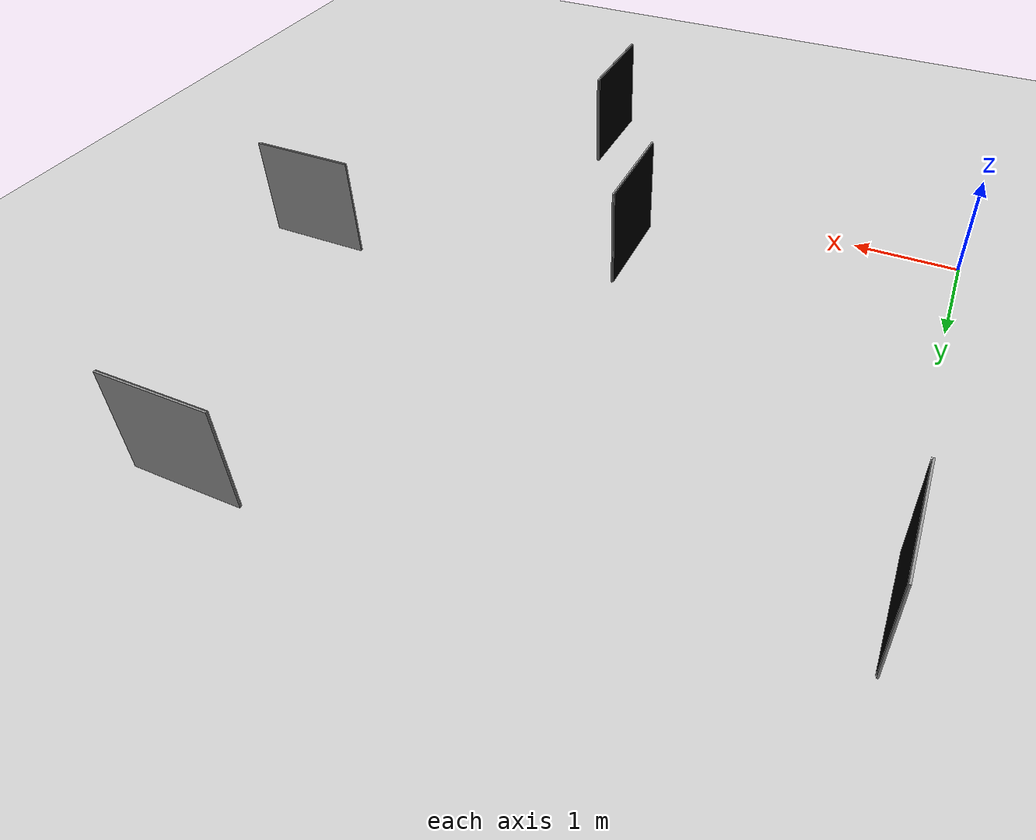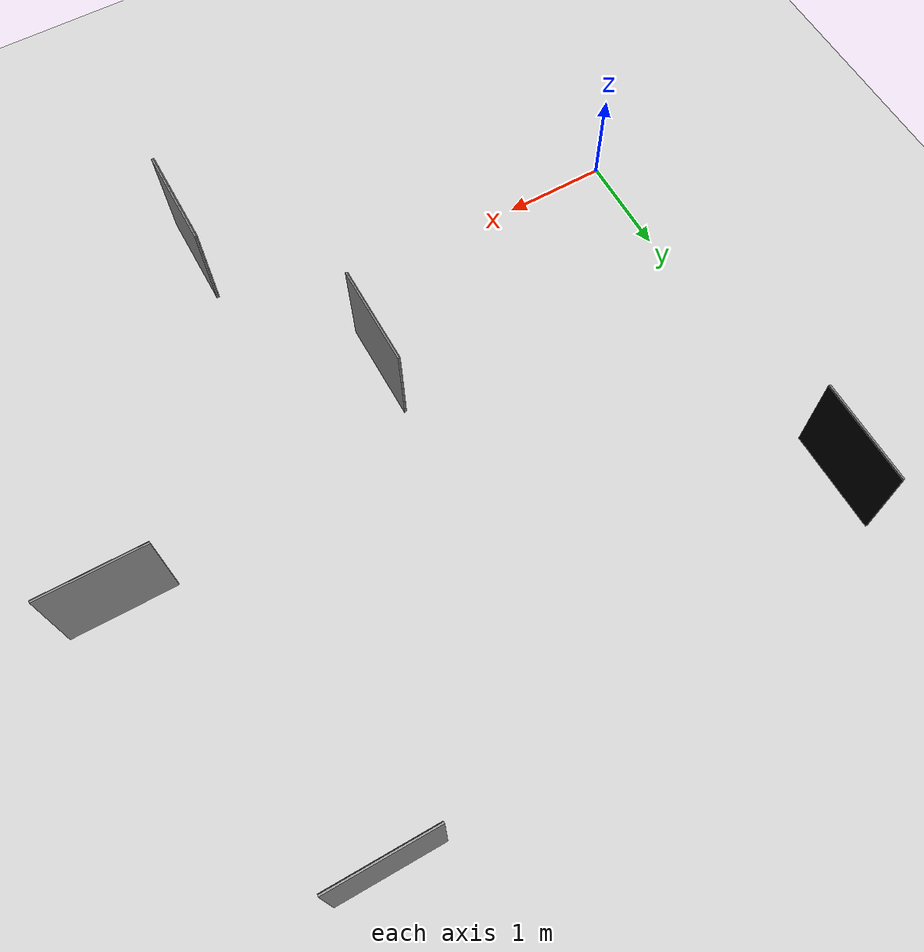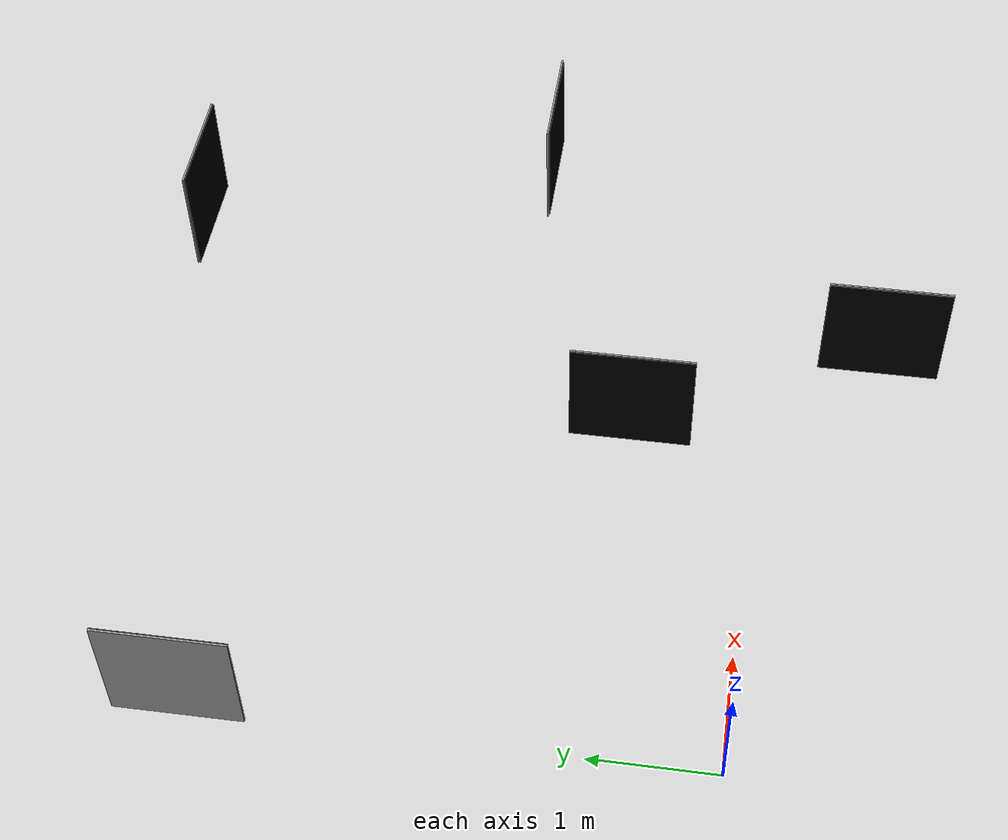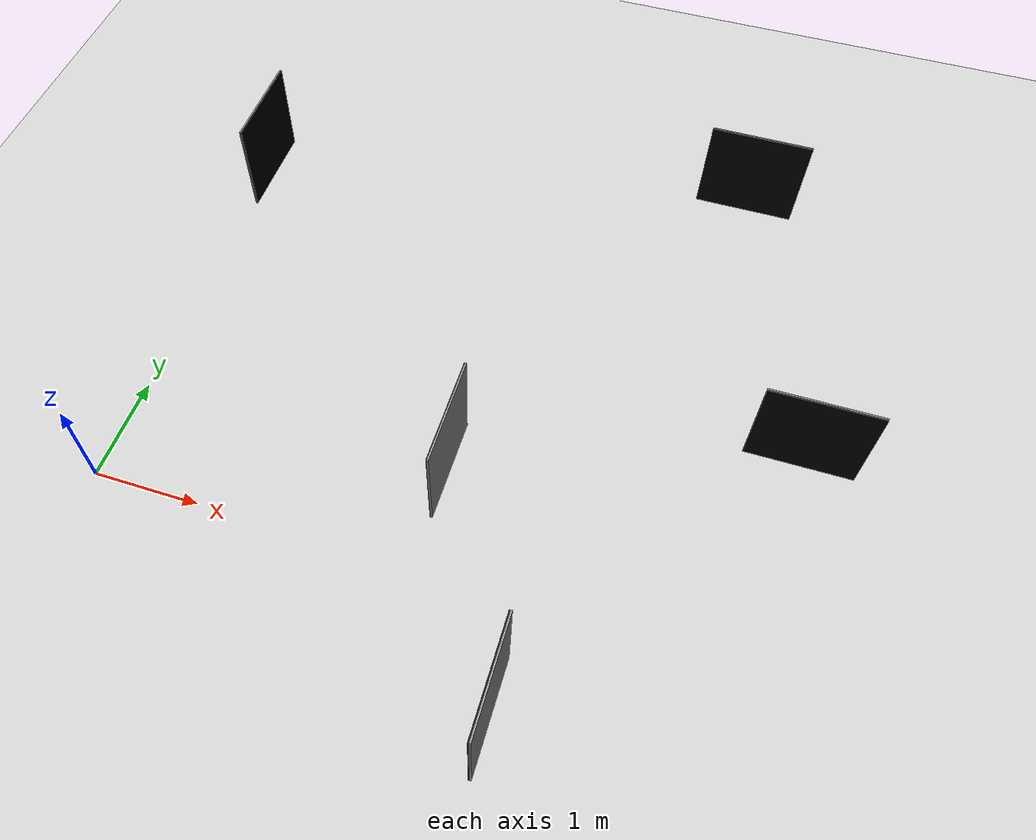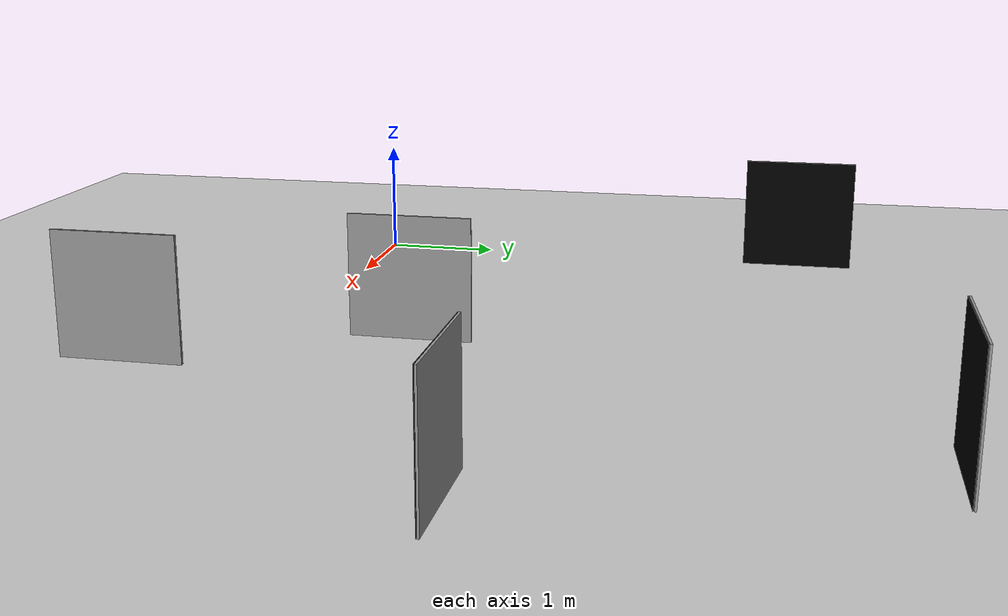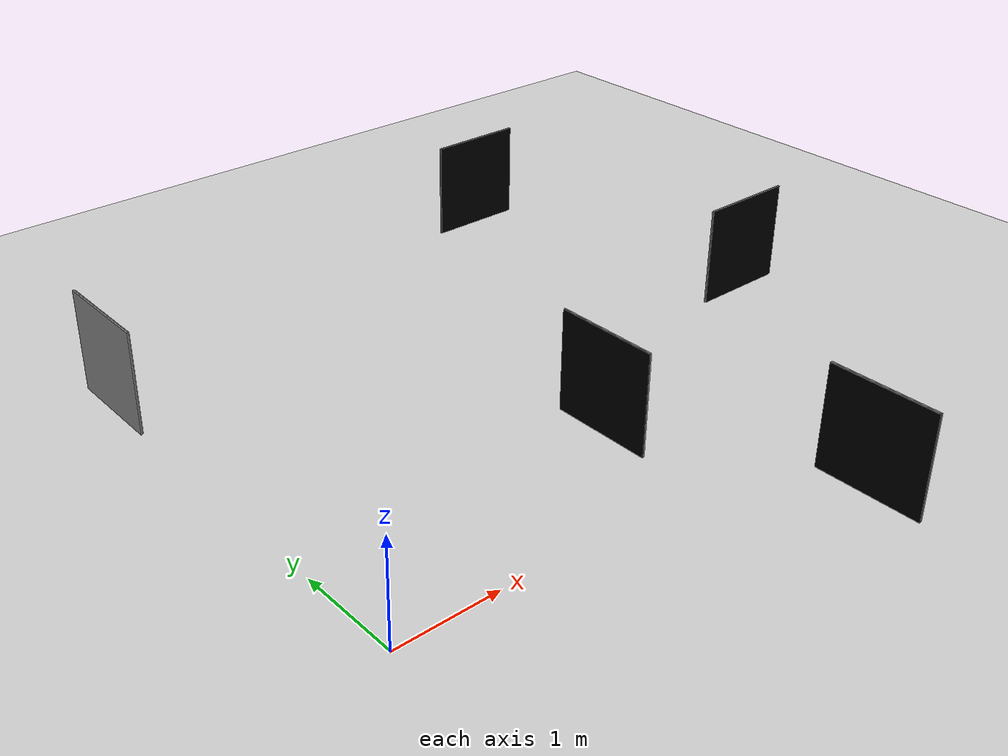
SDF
<sdf version="1.6">
 <world name="default">
  <scene><ambient>0.4 0.4 0.4 1</ambient><background>0.7 0.7 0.7 1</background><shadows>1</shadows></scene>
  <light name="sun" type="directional">
   <pose>0 0 10 0 -0 0</pose>
   <diffuse>0.8 0.8 0.8 1</diffuse>
   <specular>0.2 0.2 0.2 1</specular>
   <attenuation>
    <range>1000</range>
    <constant>0.9</constant>
    <linear>0.01</linear>
    <quadratic>0.001</quadratic>
   </attenuation>
   <direction>-0.5 0.1 -0.9</direction>
  </light>
  <model name="ground_plane">
   <static>1</static>
   <link name="link">
    <collision name="collision">
     <geometry><plane><normal>0 0 1</normal><size>100 100</size></plane></geometry>
     <surface><friction><ode><mu>100</mu><mu2>50</mu2></ode></friction></surface>
    </collision>
    <visual name="visual">
     <cast_shadows>0</cast_shadows>
     <geometry><plane><normal>0 0 1</normal><size>100 100</size></plane></geometry>
     <material>
      <script><uri>file://media/materials/scripts/gazebo.material</uri><name>Gazebo/Grey</name></script>
     </material>
    </visual>
   </link>
  </model>
  <gravity>0 0 -9.8</gravity>
  <magnetic_field>6e-06 2.3e-05 -4.2e-05</magnetic_field>
  <atmosphere type="adiabatic"/>
  <physics name="default_physics" default="0" type="ode">
   <max_step_size>0.001</max_step_size>
   <real_time_factor>1</real_time_factor>
   <real_time_update_rate>1000</real_time_update_rate>
  </physics>
  <spherical_coordinates>
   <surface_model>EARTH_WGS84</surface_model>
   <latitude_deg>0</latitude_deg>
   <longitude_deg>0</longitude_deg>
   <elevation>0</elevation>
   <heading_deg>0</heading_deg>
  </spherical_coordinates>
  <model name="Tag_0">
   <static>1</static>
   <link name="robot_link">
    <visual name="body_visual">
     <geometry><box><size>1 0.01 1</size></box></geometry>
     <material>
      <ambient>0 0 0 1</ambient>
      <diffuse>0 0 0 1</diffuse>
      <specular>0 0 0 0</specular>
      <emissive>1 1 1 1</emissive>
      <script>
       <uri>model://Tag_0/materials/scripts</uri>
       <uri>model://Tag_0/materials/textures</uri>
       <name>RepeatedTextureTag0</name>
      </script>
     </material>
    </visual>
   </link>
   <pose>4 -1 0.5 0 0 -1.5708</pose>
  </model>
  <physics name="default_physics" default="0" type="ode">
   <real_time_update_rate>1000</real_time_update_rate>
   <max_step_size>0.001</max_step_size>
   <real_time_factor>1</real_time_factor>
   <ode>
    <solver>
     <type>quick</type>
     <iters>150</iters>
     <precon_iters>0</precon_iters>
     <sor>1.4</sor>
     <use_dynamic_moi_rescaling>1</use_dynamic_moi_rescaling>
    </solver>
    <constraints>
     <cfm>1e-05</cfm>
     <erp>0.2</erp>
     <contact_max_correcting_vel>2000</contact_max_correcting_vel>
     <contact_surface_layer>0.01</contact_surface_layer>
    </constraints>
   </ode>
  </physics>
  <model name="Tag_1">
   <static>1</static>
   <link name="robot_link">
    <visual name="body_visual">
     <geometry><box><size>1 0.001 1</size></box></geometry>
     <material>
      <ambient>0 0 0 1</ambient>
      <diffuse>0 0 0 1</diffuse>
      <specular>0 0 0 0</specular>
      <emissive>1 1 1 1</emissive>
      <script>
       <uri>model://Tag_1/materials/scripts</uri>
       <uri>model://Tag_1/materials/textures</uri>
       <name>RepeatedTextureTag1</name>
      </script>
     </material>
    </visual>
   </link>
   <pose>3 1 0.5 0 0 -1.5708</pose>
  </model>
  <model name="Tag_2">
   <static>1</static>
   <link name="robot_link">
    <visual name="body_visual">
     <geometry><box><size>1 0.001 1</size></box></geometry>
     <material>
      <ambient>0 0 0 1</ambient>
      <diffuse>0 0 0 1</diffuse>
      <specular>0 0 0 0</specular>
      <emissive>1 1 1 1</emissive>
      <script>
       <uri>model://Tag_2/materials/scripts</uri>
       <uri>model://Tag_2/materials/textures</uri>
       <name>RepeatedTextureTag2</name>
      </script>
     </material>
    </visual>
   </link>
   <pose>6 2 0.5 0 -0 0</pose>
  </model>
  <model name="Tag_3">
   <static>1</static>
   <link name="robot_link">
    <visual name="body_visual">
     <geometry><box><size>1 0.001 1</size></box></geometry>
     <material>
      <ambient>0 0 0 1</ambient>
      <diffuse>0 0 0 1</diffuse>
      <specular>0 0 0 0</specular>
      <emissive>1 1 1 1</emissive>
      <script>
       <uri>model://Tag_3/materials/scripts</uri>
       <uri>model://Tag_3/materials/textures</uri>
       <name>RepeatedTextureTag3</name>
      </script>
     </material>
    </visual>
   </link>
   <pose>5 5 0.5 0 -0 0</pose>
  </model>
  <model name="Tag_4">
   <static>1</static>
   <link name="robot_link">
    <visual name="body_visual">
     <geometry><box><size>1 0.001 1</size></box></geometry>
     <material>
      <ambient>0 0 0 1</ambient>
      <diffuse>0 0 0 1</diffuse>
      <specular>0 0 0 0</specular>
      <emissive>1 1 1 1</emissive>
      <script>
       <uri>model://Tag_4/materials/scripts</uri>
       <uri>model://Tag_4/materials/textures</uri>
       <name>RepeatedTextureTag4</name>
      </script>
     </material>
    </visual>
   </link>
   <pose>0 4 0.5 0 0 -1.5708</pose>
  </model>
  <model name="grey_box">
   <static>1</static>
   <link name="robot_link">
    <visual name="body_visual">
     <geometry><box><size>1 0.015 1</size></box></geometry>
     <material>
      <script><name>Gazebo/Grey</name><uri>file://media/materials/scripts/gazebo.material</uri></script>
      <shader type="pixel"><normal_map>__default__</normal_map></shader>
      <ambient>0.3 0.3 0.3 1</ambient>
      <diffuse>0.7 0.7 0.7 1</diffuse>
      <specular>0.01 0.01 0.01 1</specular>
      <emissive>0 0 0 1</emissive>
     </material>
    </visual>
   </link>
   <pose>4.015 -1 0.5 0 0 -1.5708</pose>
  </model>
  <model name="grey_box_clone">
   <static>1</static>
   <link name="robot_link">
    <visual name="body_visual">
     <geometry><box><size>1 0.015 1</size></box></geometry>
     <material>
      <script><name>Gazebo/Grey</name><uri>file://media/materials/scripts/gazebo.material</uri></script>
      <shader type="pixel"><normal_map>__default__</normal_map></shader>
      <ambient>0.3 0.3 0.3 1</ambient>
      <diffuse>0.7 0.7 0.7 1</diffuse>
      <specular>0.01 0.01 0.01 1</specular>
      <emissive>0 0 0 1</emissive>
     </material>
    </visual>
   </link>
   <pose>3.015 1 0.5 0 0 -1.5708</pose>
  </model>
  <model name="grey_box_clone_clone">
   <static>1</static>
   <link name="robot_link">
    <visual name="body_visual">
     <geometry><box><size>1 0.015 1</size></box></geometry>
     <material>
      <script><name>Gazebo/Grey</name><uri>file://media/materials/scripts/gazebo.material</uri></script>
      <shader type="pixel"><normal_map>__default__</normal_map></shader>
      <ambient>0.3 0.3 0.3 1</ambient>
      <diffuse>0.7 0.7 0.7 1</diffuse>
      <specular>0.01 0.01 0.01 1</specular>
      <emissive>0 0 0 1</emissive>
     </material>
    </visual>
   </link>
   <pose>-0.015 4 0.5 0 0 -1.5708</pose>
  </model>
  <model name="grey_box_clone_clone_clone">
   <static>1</static>
   <link name="robot_link">
    <visual name="body_visual">
     <geometry><box><size>1 0.015 1</size></box></geometry>
     <material>
      <script><name>Gazebo/Grey</name><uri>file://media/materials/scripts/gazebo.material</uri></script>
      <shader type="pixel"><normal_map>__default__</normal_map></shader>
      <ambient>0.3 0.3 0.3 1</ambient>
      <diffuse>0.7 0.7 0.7 1</diffuse>
      <specular>0.01 0.01 0.01 1</specular>
      <emissive>0 0 0 1</emissive>
     </material>
    </visual>
   </link>
   <pose>5 5.015 0.5 0 0 -4e-06</pose>
  </model>
  <model name="grey_box_clone_clone_clone_0">
   <static>1</static>
   <link name="robot_link">
    <visual name="body_visual">
     <geometry><box><size>1 0.015 1</size></box></geometry>
     <material>
      <script><name>Gazebo/Grey</name><uri>file://media/materials/scripts/gazebo.material</uri></script>
      <shader type="pixel"><normal_map>__default__</normal_map></shader>
      <ambient>0.3 0.3 0.3 1</ambient>
      <diffuse>0.7 0.7 0.7 1</diffuse>
      <specular>0.01 0.01 0.01 1</specular>
      <emissive>0 0 0 1</emissive>
     </material>
    </visual>
   </link>
   <pose>6 2.015 0.5 0 0 -4e-06</pose>
  </model>
 </world>
</sdf>
